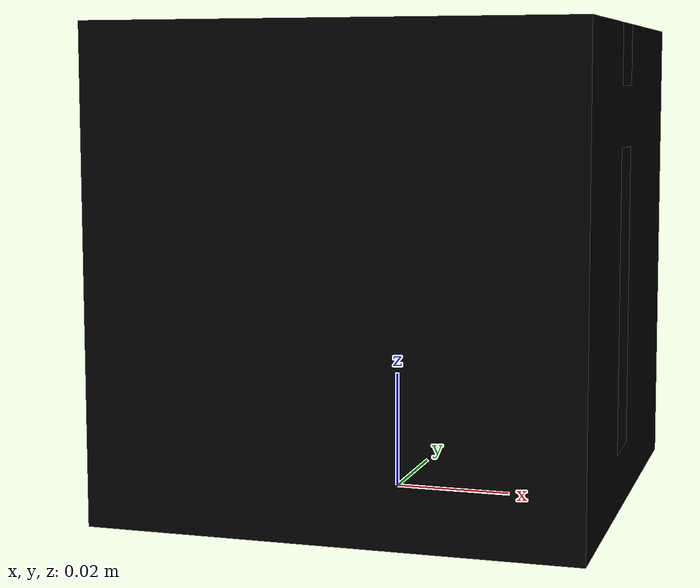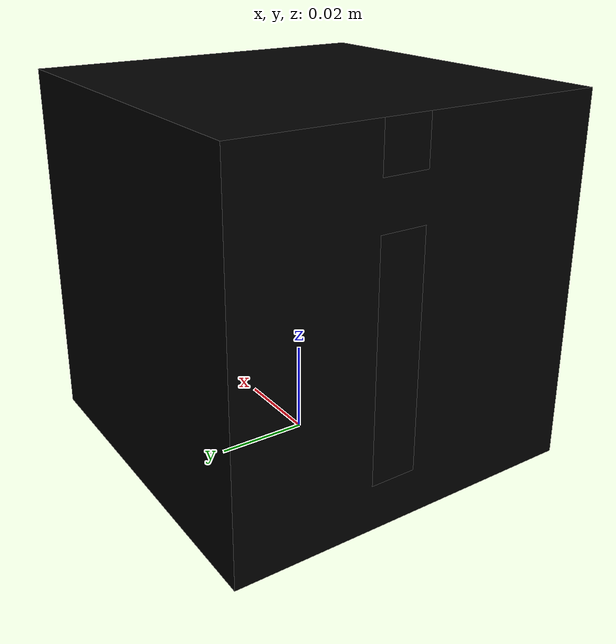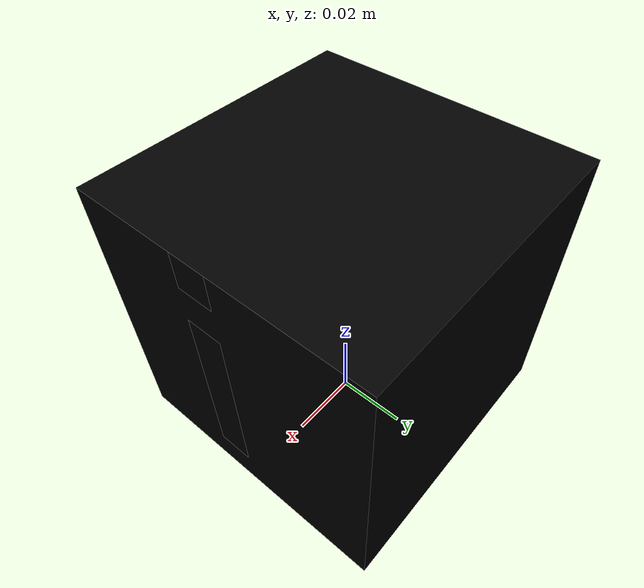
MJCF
<mujoco model="cubeI">
  <default>
    <default class="visual">
      <geom group="2" type="mesh" contype="0" conaffinity="0"/>
    </default>
    <default class="collision">
      <geom group="3" type="box"/>
    </default>
  </default>
  <asset>
    <material name="Material" specular="1.0" shininess="0.09607843099999999" rgba="1.000000 1.000000 1.000000 1.000000"/>
    <material name="Material.001" specular="0.0" shininess="0.09607843099999999" rgba="0.000000 0.000000 0.000000 1.000000"/>
    <mesh file="cubeI_0.obj"/>
    <mesh file="cubeI_1.obj"/>
  </asset>
  <worldbody>
    <body name="cubeI">
      <geom mesh="cubeI_0" material="Material.001" class="visual"/>
      <geom mesh="cubeI_1" material="Material" class="visual" rgba="0 0 0 1"/>

      <geom class="collision" pos="0.00027 -0.000078 0.040286" size="0.04 0.04 0.04" name="cubeI"/>
    </body>
  </worldbody>
</mujoco>
